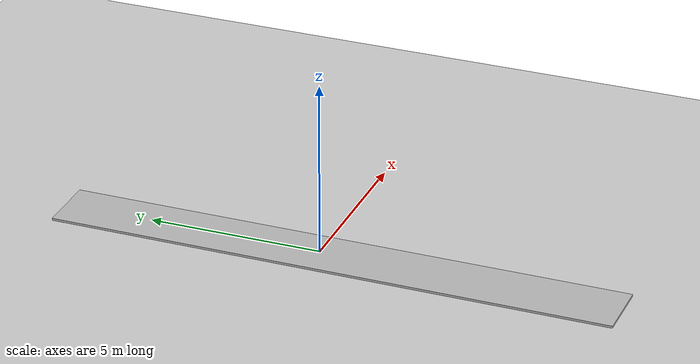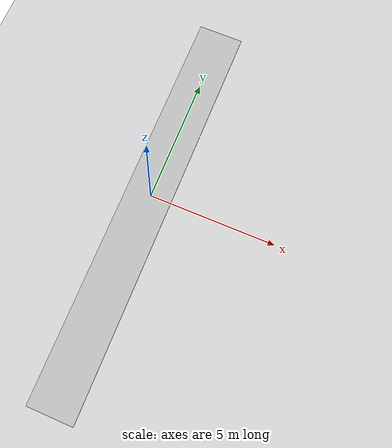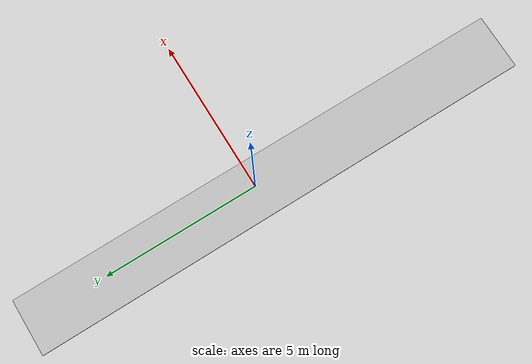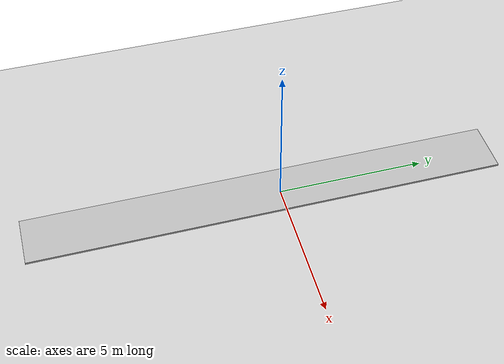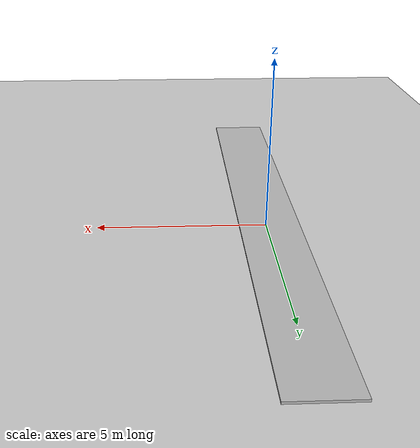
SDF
<sdf version="1.6">
 <world name="default">
  <light name="sun" type="directional">
   <pose>0 0 10 0 -0 0</pose>
   <diffuse>0.8 0.8 0.8 1</diffuse>
   <specular>0.2 0.2 0.2 1</specular>
   <attenuation>
    <range>1000</range>
    <constant>0.9</constant>
    <linear>0.01</linear>
    <quadratic>0.001</quadratic>
   </attenuation>
   <direction>-0.5 0.1 -0.9</direction>
  </light>
  <model name="ground_plane">
   <static>1</static>
   <link name="link">
    <collision name="collision">
     <geometry><plane><normal>0 0 1</normal><size>100 100</size></plane></geometry>
     <surface><friction><ode><mu>100</mu><mu2>50</mu2></ode></friction></surface>
    </collision>
    <visual name="visual">
     <cast_shadows>0</cast_shadows>
     <geometry><plane><normal>0 0 1</normal><size>100 100</size></plane></geometry>
     <material>
      <script><uri>file://media/materials/scripts/gazebo.material</uri><name>Gazebo/Grey</name></script>
     </material>
    </visual>
    <velocity_decay><linear>0</linear><angular>0</angular></velocity_decay>
   </link>
  </model>
  <physics name="default_physics" default="0" type="ode">
   <max_step_size>0.01</max_step_size>
   <real_time_factor>1</real_time_factor>
   <real_time_update_rate>100</real_time_update_rate>
  </physics>
  <scene><ambient>0.4 0.4 0.4 1</ambient><background>0.7 0.7 0.7 1</background><shadows>1</shadows></scene>
  <gravity>0 0 -9.8</gravity>
  <magnetic_field>6e-06 2.3e-05 -4.2e-05</magnetic_field>
  <atmosphere type="adiabatic"/>
  <spherical_coordinates>
   <surface_model>EARTH_WGS84</surface_model>
   <latitude_deg>0</latitude_deg>
   <longitude_deg>0</longitude_deg>
   <elevation>0</elevation>
   <heading_deg>0</heading_deg>
  </spherical_coordinates>
  <model name="robotrace_plane">
   <static>1</static>
   <link name="link">
    <collision name="collision"><geometry><box><size>1.8 16.2 0.1</size></box></geometry></collision>
    <visual name="visual">
     <cast_shadows>0</cast_shadows>
     <geometry><box><size>1.8 16.2 0.1</size></box></geometry>
     <material>
      <script>
       <uri>model://robotrace_plane/materials/scripts</uri>
       <uri>model://robotrace_plane/materials/textures</uri>
       <name>vrc/robotrace</name>
      </script>
     </material>
    </visual>
   </link>
   <pose>-0.089714 -0.522891 0 0 -0 0</pose>
  </model>
 </world>
</sdf>
